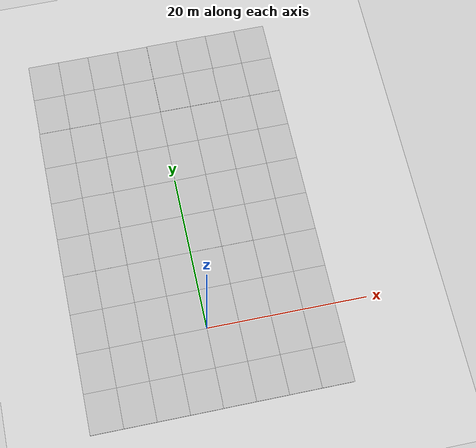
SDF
<sdf version="1.7">
 <world name="default">
  <light name="sun" type="directional">
   <pose>0 0 10 0 -0 0</pose>
   <diffuse>0.8 0.8 0.8 1</diffuse>
   <specular>0.2 0.2 0.2 1</specular>
   <attenuation>
    <range>1000</range>
    <constant>0.9</constant>
    <linear>0.01</linear>
    <quadratic>0.001</quadratic>
   </attenuation>
   <direction>-0.5 0.1 -0.9</direction>
   <spot><inner_angle>0</inner_angle><outer_angle>0</outer_angle><falloff>0</falloff></spot>
  </light>
  <model name="ground_plane">
   <static>1</static>
   <link name="link">
    <collision name="collision">
     <geometry><plane><normal>0 0 1</normal><size>100 100</size></plane></geometry>
     <surface><friction><ode><mu>100</mu><mu2>50</mu2></ode></friction></surface>
    </collision>
    <visual name="visual">
     <cast_shadows>0</cast_shadows>
     <geometry><plane><normal>0 0 1</normal><size>100 100</size></plane></geometry>
     <material>
      <script><uri>file://media/materials/scripts/gazebo.material</uri><name>Gazebo/Grey</name></script>
     </material>
    </visual>
   </link>
  </model>
  <gravity>0 0 -9.8</gravity>
  <magnetic_field>6e-06 2.3e-05 -4.2e-05</magnetic_field>
  <atmosphere type="adiabatic"/>
  <physics type="ode">
   <max_step_size>0.001</max_step_size>
   <real_time_factor>1</real_time_factor>
   <real_time_update_rate>1000</real_time_update_rate>
  </physics>
  <scene><ambient>0.4 0.4 0.4 1</ambient><background>0.7 0.7 0.7 1</background><shadows>1</shadows></scene>
  <spherical_coordinates>
   <surface_model>EARTH_WGS84</surface_model>
   <latitude_deg>0</latitude_deg>
   <longitude_deg>0</longitude_deg>
   <elevation>0</elevation>
   <heading_deg>0</heading_deg>
  </spherical_coordinates>
  <model name="mud_box">
   <static>1</static>
   <link name="link">
    <collision name="collision"><geometry><box><size>8 10 0.2</size></box></geometry></collision>
    <visual name="visual_1">
     <pose>-2 2.5 0 0 -0 0</pose>
     <cast_shadows>0</cast_shadows>
     <geometry><box><size>4 5 0.2</size></box></geometry>
     <material>
      <script>
       <uri>model://mud_box/materials/scripts</uri>
       <uri>model://mud_box/materials/textures</uri>
       <name>vrc/mud</name>
      </script>
     </material>
    </visual>
    <visual name="visual_2">
     <pose>2 2.5 0 0 -0 0</pose>
     <cast_shadows>0</cast_shadows>
     <geometry><box><size>4 5 0.2</size></box></geometry>
     <material>
      <script>
       <uri>model://mud_box/materials/scripts</uri>
       <uri>model://mud_box/materials/textures</uri>
       <name>vrc/mud</name>
      </script>
     </material>
    </visual>
    <visual name="visual_3">
     <pose>2 -2.5 0 0 -0 0</pose>
     <cast_shadows>0</cast_shadows>
     <geometry><box><size>4 5 0.2</size></box></geometry>
     <material>
      <script>
       <uri>model://mud_box/materials/scripts</uri>
       <uri>model://mud_box/materials/textures</uri>
       <name>vrc/mud</name>
      </script>
     </material>
    </visual>
    <visual name="visual_4">
     <pose>-2 -2.5 0 0 -0 0</pose>
     <cast_shadows>0</cast_shadows>
     <geometry><box><size>4 5 0.2</size></box></geometry>
     <material>
      <script>
       <uri>model://mud_box/materials/scripts</uri>
       <uri>model://mud_box/materials/textures</uri>
       <name>vrc/mud</name>
      </script>
     </material>
    </visual>
   </link>
   <pose>-4.00663 5.0057 0 0 -0 0</pose>
  </model>
  <model name="mud_box_0">
   <static>1</static>
   <link name="link">
    <collision name="collision"><geometry><box><size>8 10 0.2</size></box></geometry></collision>
    <visual name="visual_1">
     <pose>-2 2.5 0 0 -0 0</pose>
     <cast_shadows>0</cast_shadows>
     <geometry><box><size>4 5 0.2</size></box></geometry>
     <material>
      <script>
       <uri>model://mud_box/materials/scripts</uri>
       <uri>model://mud_box/materials/textures</uri>
       <name>vrc/mud</name>
      </script>
     </material>
    </visual>
    <visual name="visual_2">
     <pose>2 2.5 0 0 -0 0</pose>
     <cast_shadows>0</cast_shadows>
     <geometry><box><size>4 5 0.2</size></box></geometry>
     <material>
      <script>
       <uri>model://mud_box/materials/scripts</uri>
       <uri>model://mud_box/materials/textures</uri>
       <name>vrc/mud</name>
      </script>
     </material>
    </visual>
    <visual name="visual_3">
     <pose>2 -2.5 0 0 -0 0</pose>
     <cast_shadows>0</cast_shadows>
     <geometry><box><size>4 5 0.2</size></box></geometry>
     <material>
      <script>
       <uri>model://mud_box/materials/scripts</uri>
       <uri>model://mud_box/materials/textures</uri>
       <name>vrc/mud</name>
      </script>
     </material>
    </visual>
    <visual name="visual_4">
     <pose>-2 -2.5 0 0 -0 0</pose>
     <cast_shadows>0</cast_shadows>
     <geometry><box><size>4 5 0.2</size></box></geometry>
     <material>
      <script>
       <uri>model://mud_box/materials/scripts</uri>
       <uri>model://mud_box/materials/textures</uri>
       <name>vrc/mud</name>
      </script>
     </material>
    </visual>
   </link>
   <pose>3.9914 5.01635 0 0 -0 0</pose>
  </model>
  <model name="mud_box_1">
   <static>1</static>
   <link name="link">
    <collision name="collision"><geometry><box><size>8 10 0.2</size></box></geometry></collision>
    <visual name="visual_1">
     <pose>-2 2.5 0 0 -0 0</pose>
     <cast_shadows>0</cast_shadows>
     <geometry><box><size>4 5 0.2</size></box></geometry>
     <material>
      <script>
       <uri>model://mud_box/materials/scripts</uri>
       <uri>model://mud_box/materials/textures</uri>
       <name>vrc/mud</name>
      </script>
     </material>
    </visual>
    <visual name="visual_2">
     <pose>2 2.5 0 0 -0 0</pose>
     <cast_shadows>0</cast_shadows>
     <geometry><box><size>4 5 0.2</size></box></geometry>
     <material>
      <script>
       <uri>model://mud_box/materials/scripts</uri>
       <uri>model://mud_box/materials/textures</uri>
       <name>vrc/mud</name>
      </script>
     </material>
    </visual>
    <visual name="visual_3">
     <pose>2 -2.5 0 0 -0 0</pose>
     <cast_shadows>0</cast_shadows>
     <geometry><box><size>4 5 0.2</size></box></geometry>
     <material>
      <script>
       <uri>model://mud_box/materials/scripts</uri>
       <uri>model://mud_box/materials/textures</uri>
       <name>vrc/mud</name>
      </script>
     </material>
    </visual>
    <visual name="visual_4">
     <pose>-2 -2.5 0 0 -0 0</pose>
     <cast_shadows>0</cast_shadows>
     <geometry><box><size>4 5 0.2</size></box></geometry>
     <material>
      <script>
       <uri>model://mud_box/materials/scripts</uri>
       <uri>model://mud_box/materials/textures</uri>
       <name>vrc/mud</name>
      </script>
     </material>
    </visual>
   </link>
   <pose>11.9781 5.00779 0 0 -0 0</pose>
  </model>
  <model name="mud_box_2">
   <static>1</static>
   <link name="link">
    <collision name="collision"><geometry><box><size>8 10 0.2</size></box></geometry></collision>
    <visual name="visual_1">
     <pose>-2 2.5 0 0 -0 0</pose>
     <cast_shadows>0</cast_shadows>
     <geometry><box><size>4 5 0.2</size></box></geometry>
     <material>
      <script>
       <uri>model://mud_box/materials/scripts</uri>
       <uri>model://mud_box/materials/textures</uri>
       <name>vrc/mud</name>
      </script>
     </material>
    </visual>
    <visual name="visual_2">
     <pose>2 2.5 0 0 -0 0</pose>
     <cast_shadows>0</cast_shadows>
     <geometry><box><size>4 5 0.2</size></box></geometry>
     <material>
      <script>
       <uri>model://mud_box/materials/scripts</uri>
       <uri>model://mud_box/materials/textures</uri>
       <name>vrc/mud</name>
      </script>
     </material>
    </visual>
    <visual name="visual_3">
     <pose>2 -2.5 0 0 -0 0</pose>
     <cast_shadows>0</cast_shadows>
     <geometry><box><size>4 5 0.2</size></box></geometry>
     <material>
      <script>
       <uri>model://mud_box/materials/scripts</uri>
       <uri>model://mud_box/materials/textures</uri>
       <name>vrc/mud</name>
      </script>
     </material>
    </visual>
    <visual name="visual_4">
     <pose>-2 -2.5 0 0 -0 0</pose>
     <cast_shadows>0</cast_shadows>
     <geometry><box><size>4 5 0.2</size></box></geometry>
     <material>
      <script>
       <uri>model://mud_box/materials/scripts</uri>
       <uri>model://mud_box/materials/textures</uri>
       <name>vrc/mud</name>
      </script>
     </material>
    </visual>
   </link>
   <pose>-11.9879 4.99634 0 0 -0 0</pose>
  </model>
  <model name="mud_box_3">
   <static>1</static>
   <link name="link">
    <collision name="collision"><geometry><box><size>8 10 0.2</size></box></geometry></collision>
    <visual name="visual_1">
     <pose>-2 2.5 0 0 -0 0</pose>
     <cast_shadows>0</cast_shadows>
     <geometry><box><size>4 5 0.2</size></box></geometry>
     <material>
      <script>
       <uri>model://mud_box/materials/scripts</uri>
       <uri>model://mud_box/materials/textures</uri>
       <name>vrc/mud</name>
      </script>
     </material>
    </visual>
    <visual name="visual_2">
     <pose>2 2.5 0 0 -0 0</pose>
     <cast_shadows>0</cast_shadows>
     <geometry><box><size>4 5 0.2</size></box></geometry>
     <material>
      <script>
       <uri>model://mud_box/materials/scripts</uri>
       <uri>model://mud_box/materials/textures</uri>
       <name>vrc/mud</name>
      </script>
     </material>
    </visual>
    <visual name="visual_3">
     <pose>2 -2.5 0 0 -0 0</pose>
     <cast_shadows>0</cast_shadows>
     <geometry><box><size>4 5 0.2</size></box></geometry>
     <material>
      <script>
       <uri>model://mud_box/materials/scripts</uri>
       <uri>model://mud_box/materials/textures</uri>
       <name>vrc/mud</name>
      </script>
     </material>
    </visual>
    <visual name="visual_4">
     <pose>-2 -2.5 0 0 -0 0</pose>
     <cast_shadows>0</cast_shadows>
     <geometry><box><size>4 5 0.2</size></box></geometry>
     <material>
      <script>
       <uri>model://mud_box/materials/scripts</uri>
       <uri>model://mud_box/materials/textures</uri>
       <name>vrc/mud</name>
      </script>
     </material>
    </visual>
   </link>
   <pose>-11.9851 -4.99234 0 0 -0 0</pose>
  </model>
  <model name="mud_box_4">
   <static>1</static>
   <link name="link">
    <collision name="collision"><geometry><box><size>8 10 0.2</size></box></geometry></collision>
    <visual name="visual_1">
     <pose>-2 2.5 0 0 -0 0</pose>
     <cast_shadows>0</cast_shadows>
     <geometry><box><size>4 5 0.2</size></box></geometry>
     <material>
      <script>
       <uri>model://mud_box/materials/scripts</uri>
       <uri>model://mud_box/materials/textures</uri>
       <name>vrc/mud</name>
      </script>
     </material>
    </visual>
    <visual name="visual_2">
     <pose>2 2.5 0 0 -0 0</pose>
     <cast_shadows>0</cast_shadows>
     <geometry><box><size>4 5 0.2</size></box></geometry>
     <material>
      <script>
       <uri>model://mud_box/materials/scripts</uri>
       <uri>model://mud_box/materials/textures</uri>
       <name>vrc/mud</name>
      </script>
     </material>
    </visual>
    <visual name="visual_3">
     <pose>2 -2.5 0 0 -0 0</pose>
     <cast_shadows>0</cast_shadows>
     <geometry><box><size>4 5 0.2</size></box></geometry>
     <material>
      <script>
       <uri>model://mud_box/materials/scripts</uri>
       <uri>model://mud_box/materials/textures</uri>
       <name>vrc/mud</name>
      </script>
     </material>
    </visual>
    <visual name="visual_4">
     <pose>-2 -2.5 0 0 -0 0</pose>
     <cast_shadows>0</cast_shadows>
     <geometry><box><size>4 5 0.2</size></box></geometry>
     <material>
      <script>
       <uri>model://mud_box/materials/scripts</uri>
       <uri>model://mud_box/materials/textures</uri>
       <name>vrc/mud</name>
      </script>
     </material>
    </visual>
   </link>
   <pose>-3.99599 -4.99283 0 0 -0 0</pose>
  </model>
  <model name="mud_box_5">
   <static>1</static>
   <link name="link">
    <collision name="collision"><geometry><box><size>8 10 0.2</size></box></geometry></collision>
    <visual name="visual_1">
     <pose>-2 2.5 0 0 -0 0</pose>
     <cast_shadows>0</cast_shadows>
     <geometry><box><size>4 5 0.2</size></box></geometry>
     <material>
      <script>
       <uri>model://mud_box/materials/scripts</uri>
       <uri>model://mud_box/materials/textures</uri>
       <name>vrc/mud</name>
      </script>
     </material>
    </visual>
    <visual name="visual_2">
     <pose>2 2.5 0 0 -0 0</pose>
     <cast_shadows>0</cast_shadows>
     <geometry><box><size>4 5 0.2</size></box></geometry>
     <material>
      <script>
       <uri>model://mud_box/materials/scripts</uri>
       <uri>model://mud_box/materials/textures</uri>
       <name>vrc/mud</name>
      </script>
     </material>
    </visual>
    <visual name="visual_3">
     <pose>2 -2.5 0 0 -0 0</pose>
     <cast_shadows>0</cast_shadows>
     <geometry><box><size>4 5 0.2</size></box></geometry>
     <material>
      <script>
       <uri>model://mud_box/materials/scripts</uri>
       <uri>model://mud_box/materials/textures</uri>
       <name>vrc/mud</name>
      </script>
     </material>
    </visual>
    <visual name="visual_4">
     <pose>-2 -2.5 0 0 -0 0</pose>
     <cast_shadows>0</cast_shadows>
     <geometry><box><size>4 5 0.2</size></box></geometry>
     <material>
      <script>
       <uri>model://mud_box/materials/scripts</uri>
       <uri>model://mud_box/materials/textures</uri>
       <name>vrc/mud</name>
      </script>
     </material>
    </visual>
   </link>
   <pose>3.97214 -4.97807 0 0 -0 0</pose>
  </model>
  <model name="mud_box_6">
   <static>1</static>
   <link name="link">
    <collision name="collision"><geometry><box><size>8 10 0.2</size></box></geometry></collision>
    <visual name="visual_1">
     <pose>-2 2.5 0 0 -0 0</pose>
     <cast_shadows>0</cast_shadows>
     <geometry><box><size>4 5 0.2</size></box></geometry>
     <material>
      <script>
       <uri>model://mud_box/materials/scripts</uri>
       <uri>model://mud_box/materials/textures</uri>
       <name>vrc/mud</name>
      </script>
     </material>
    </visual>
    <visual name="visual_2">
     <pose>2 2.5 0 0 -0 0</pose>
     <cast_shadows>0</cast_shadows>
     <geometry><box><size>4 5 0.2</size></box></geometry>
     <material>
      <script>
       <uri>model://mud_box/materials/scripts</uri>
       <uri>model://mud_box/materials/textures</uri>
       <name>vrc/mud</name>
      </script>
     </material>
    </visual>
    <visual name="visual_3">
     <pose>2 -2.5 0 0 -0 0</pose>
     <cast_shadows>0</cast_shadows>
     <geometry><box><size>4 5 0.2</size></box></geometry>
     <material>
      <script>
       <uri>model://mud_box/materials/scripts</uri>
       <uri>model://mud_box/materials/textures</uri>
       <name>vrc/mud</name>
      </script>
     </material>
    </visual>
    <visual name="visual_4">
     <pose>-2 -2.5 0 0 -0 0</pose>
     <cast_shadows>0</cast_shadows>
     <geometry><box><size>4 5 0.2</size></box></geometry>
     <material>
      <script>
       <uri>model://mud_box/materials/scripts</uri>
       <uri>model://mud_box/materials/textures</uri>
       <name>vrc/mud</name>
      </script>
     </material>
    </visual>
   </link>
   <pose>11.9703 -4.96743 0 0 -0 0</pose>
  </model>
  <model name="mud_box_7">
   <static>1</static>
   <link name="link">
    <collision name="collision"><geometry><box><size>8 10 0.2</size></box></geometry></collision>
    <visual name="visual_1">
     <pose>-2 2.5 0 0 -0 0</pose>
     <cast_shadows>0</cast_shadows>
     <geometry><box><size>4 5 0.2</size></box></geometry>
     <material>
      <script>
       <uri>model://mud_box/materials/scripts</uri>
       <uri>model://mud_box/materials/textures</uri>
       <name>vrc/mud</name>
      </script>
     </material>
    </visual>
    <visual name="visual_2">
     <pose>2 2.5 0 0 -0 0</pose>
     <cast_shadows>0</cast_shadows>
     <geometry><box><size>4 5 0.2</size></box></geometry>
     <material>
      <script>
       <uri>model://mud_box/materials/scripts</uri>
       <uri>model://mud_box/materials/textures</uri>
       <name>vrc/mud</name>
      </script>
     </material>
    </visual>
    <visual name="visual_3">
     <pose>2 -2.5 0 0 -0 0</pose>
     <cast_shadows>0</cast_shadows>
     <geometry><box><size>4 5 0.2</size></box></geometry>
     <material>
      <script>
       <uri>model://mud_box/materials/scripts</uri>
       <uri>model://mud_box/materials/textures</uri>
       <name>vrc/mud</name>
      </script>
     </material>
    </visual>
    <visual name="visual_4">
     <pose>-2 -2.5 0 0 -0 0</pose>
     <cast_shadows>0</cast_shadows>
     <geometry><box><size>4 5 0.2</size></box></geometry>
     <material>
      <script>
       <uri>model://mud_box/materials/scripts</uri>
       <uri>model://mud_box/materials/textures</uri>
       <name>vrc/mud</name>
      </script>
     </material>
    </visual>
   </link>
   <pose>-11.9977 14.9992 0 0 -0 0</pose>
  </model>
  <model name="mud_box_8">
   <static>1</static>
   <link name="link">
    <collision name="collision"><geometry><box><size>8 10 0.2</size></box></geometry></collision>
    <visual name="visual_1">
     <pose>-2 2.5 0 0 -0 0</pose>
     <cast_shadows>0</cast_shadows>
     <geometry><box><size>4 5 0.2</size></box></geometry>
     <material>
      <script>
       <uri>model://mud_box/materials/scripts</uri>
       <uri>model://mud_box/materials/textures</uri>
       <name>vrc/mud</name>
      </script>
     </material>
    </visual>
    <visual name="visual_2">
     <pose>2 2.5 0 0 -0 0</pose>
     <cast_shadows>0</cast_shadows>
     <geometry><box><size>4 5 0.2</size></box></geometry>
     <material>
      <script>
       <uri>model://mud_box/materials/scripts</uri>
       <uri>model://mud_box/materials/textures</uri>
       <name>vrc/mud</name>
      </script>
     </material>
    </visual>
    <visual name="visual_3">
     <pose>2 -2.5 0 0 -0 0</pose>
     <cast_shadows>0</cast_shadows>
     <geometry><box><size>4 5 0.2</size></box></geometry>
     <material>
      <script>
       <uri>model://mud_box/materials/scripts</uri>
       <uri>model://mud_box/materials/textures</uri>
       <name>vrc/mud</name>
      </script>
     </material>
    </visual>
    <visual name="visual_4">
     <pose>-2 -2.5 0 0 -0 0</pose>
     <cast_shadows>0</cast_shadows>
     <geometry><box><size>4 5 0.2</size></box></geometry>
     <material>
      <script>
       <uri>model://mud_box/materials/scripts</uri>
       <uri>model://mud_box/materials/textures</uri>
       <name>vrc/mud</name>
      </script>
     </material>
    </visual>
   </link>
   <pose>-3.99328 14.9917 0 0 -0 0</pose>
  </model>
  <model name="mud_box_9">
   <static>1</static>
   <link name="link">
    <collision name="collision"><geometry><box><size>8 10 0.2</size></box></geometry></collision>
    <visual name="visual_1">
     <pose>-2 2.5 0 0 -0 0</pose>
     <cast_shadows>0</cast_shadows>
     <geometry><box><size>4 5 0.2</size></box></geometry>
     <material>
      <script>
       <uri>model://mud_box/materials/scripts</uri>
       <uri>model://mud_box/materials/textures</uri>
       <name>vrc/mud</name>
      </script>
     </material>
    </visual>
    <visual name="visual_2">
     <pose>2 2.5 0 0 -0 0</pose>
     <cast_shadows>0</cast_shadows>
     <geometry><box><size>4 5 0.2</size></box></geometry>
     <material>
      <script>
       <uri>model://mud_box/materials/scripts</uri>
       <uri>model://mud_box/materials/textures</uri>
       <name>vrc/mud</name>
      </script>
     </material>
    </visual>
    <visual name="visual_3">
     <pose>2 -2.5 0 0 -0 0</pose>
     <cast_shadows>0</cast_shadows>
     <geometry><box><size>4 5 0.2</size></box></geometry>
     <material>
      <script>
       <uri>model://mud_box/materials/scripts</uri>
       <uri>model://mud_box/materials/textures</uri>
       <name>vrc/mud</name>
      </script>
     </material>
    </visual>
    <visual name="visual_4">
     <pose>-2 -2.5 0 0 -0 0</pose>
     <cast_shadows>0</cast_shadows>
     <geometry><box><size>4 5 0.2</size></box></geometry>
     <material>
      <script>
       <uri>model://mud_box/materials/scripts</uri>
       <uri>model://mud_box/materials/textures</uri>
       <name>vrc/mud</name>
      </script>
     </material>
    </visual>
   </link>
   <pose>3.97843 15.0251 0 0 -0 0</pose>
  </model>
  <model name="mud_box_10">
   <static>1</static>
   <link name="link">
    <collision name="collision"><geometry><box><size>8 10 0.2</size></box></geometry></collision>
    <visual name="visual_1">
     <pose>-2 2.5 0 0 -0 0</pose>
     <cast_shadows>0</cast_shadows>
     <geometry><box><size>4 5 0.2</size></box></geometry>
     <material>
      <script>
       <uri>model://mud_box/materials/scripts</uri>
       <uri>model://mud_box/materials/textures</uri>
       <name>vrc/mud</name>
      </script>
     </material>
    </visual>
    <visual name="visual_2">
     <pose>2 2.5 0 0 -0 0</pose>
     <cast_shadows>0</cast_shadows>
     <geometry><box><size>4 5 0.2</size></box></geometry>
     <material>
      <script>
       <uri>model://mud_box/materials/scripts</uri>
       <uri>model://mud_box/materials/textures</uri>
       <name>vrc/mud</name>
      </script>
     </material>
    </visual>
    <visual name="visual_3">
     <pose>2 -2.5 0 0 -0 0</pose>
     <cast_shadows>0</cast_shadows>
     <geometry><box><size>4 5 0.2</size></box></geometry>
     <material>
      <script>
       <uri>model://mud_box/materials/scripts</uri>
       <uri>model://mud_box/materials/textures</uri>
       <name>vrc/mud</name>
      </script>
     </material>
    </visual>
    <visual name="visual_4">
     <pose>-2 -2.5 0 0 -0 0</pose>
     <cast_shadows>0</cast_shadows>
     <geometry><box><size>4 5 0.2</size></box></geometry>
     <material>
      <script>
       <uri>model://mud_box/materials/scripts</uri>
       <uri>model://mud_box/materials/textures</uri>
       <name>vrc/mud</name>
      </script>
     </material>
    </visual>
   </link>
   <pose>11.9756 15.0062 0 0 -0 0</pose>
  </model>
  <model name="mud_box_11">
   <static>1</static>
   <link name="link">
    <collision name="collision"><geometry><box><size>8 10 0.2</size></box></geometry></collision>
    <visual name="visual_1">
     <pose>-2 2.5 0 0 -0 0</pose>
     <cast_shadows>0</cast_shadows>
     <geometry><box><size>4 5 0.2</size></box></geometry>
     <material>
      <script>
       <uri>model://mud_box/materials/scripts</uri>
       <uri>model://mud_box/materials/textures</uri>
       <name>vrc/mud</name>
      </script>
     </material>
    </visual>
    <visual name="visual_2">
     <pose>2 2.5 0 0 -0 0</pose>
     <cast_shadows>0</cast_shadows>
     <geometry><box><size>4 5 0.2</size></box></geometry>
     <material>
      <script>
       <uri>model://mud_box/materials/scripts</uri>
       <uri>model://mud_box/materials/textures</uri>
       <name>vrc/mud</name>
      </script>
     </material>
    </visual>
    <visual name="visual_3">
     <pose>2 -2.5 0 0 -0 0</pose>
     <cast_shadows>0</cast_shadows>
     <geometry><box><size>4 5 0.2</size></box></geometry>
     <material>
      <script>
       <uri>model://mud_box/materials/scripts</uri>
       <uri>model://mud_box/materials/textures</uri>
       <name>vrc/mud</name>
      </script>
     </material>
    </visual>
    <visual name="visual_4">
     <pose>-2 -2.5 0 0 -0 0</pose>
     <cast_shadows>0</cast_shadows>
     <geometry><box><size>4 5 0.2</size></box></geometry>
     <material>
      <script>
       <uri>model://mud_box/materials/scripts</uri>
       <uri>model://mud_box/materials/textures</uri>
       <name>vrc/mud</name>
      </script>
     </material>
    </visual>
   </link>
   <pose>11.9771 24.9821 0 0 -0 0</pose>
  </model>
  <model name="mud_box_12">
   <static>1</static>
   <link name="link">
    <collision name="collision"><geometry><box><size>8 10 0.2</size></box></geometry></collision>
    <visual name="visual_1">
     <pose>-2 2.5 0 0 -0 0</pose>
     <cast_shadows>0</cast_shadows>
     <geometry><box><size>4 5 0.2</size></box></geometry>
     <material>
      <script>
       <uri>model://mud_box/materials/scripts</uri>
       <uri>model://mud_box/materials/textures</uri>
       <name>vrc/mud</name>
      </script>
     </material>
    </visual>
    <visual name="visual_2">
     <pose>2 2.5 0 0 -0 0</pose>
     <cast_shadows>0</cast_shadows>
     <geometry><box><size>4 5 0.2</size></box></geometry>
     <material>
      <script>
       <uri>model://mud_box/materials/scripts</uri>
       <uri>model://mud_box/materials/textures</uri>
       <name>vrc/mud</name>
      </script>
     </material>
    </visual>
    <visual name="visual_3">
     <pose>2 -2.5 0 0 -0 0</pose>
     <cast_shadows>0</cast_shadows>
     <geometry><box><size>4 5 0.2</size></box></geometry>
     <material>
      <script>
       <uri>model://mud_box/materials/scripts</uri>
       <uri>model://mud_box/materials/textures</uri>
       <name>vrc/mud</name>
      </script>
     </material>
    </visual>
    <visual name="visual_4">
     <pose>-2 -2.5 0 0 -0 0</pose>
     <cast_shadows>0</cast_shadows>
     <geometry><box><size>4 5 0.2</size></box></geometry>
     <material>
      <script>
       <uri>model://mud_box/materials/scripts</uri>
       <uri>model://mud_box/materials/textures</uri>
       <name>vrc/mud</name>
      </script>
     </material>
    </visual>
   </link>
   <pose>3.99898 24.991 0 0 -0 0</pose>
  </model>
  <model name="mud_box_13">
   <static>1</static>
   <link name="link">
    <collision name="collision"><geometry><box><size>8 10 0.2</size></box></geometry></collision>
    <visual name="visual_1">
     <pose>-2 2.5 0 0 -0 0</pose>
     <cast_shadows>0</cast_shadows>
     <geometry><box><size>4 5 0.2</size></box></geometry>
     <material>
      <script>
       <uri>model://mud_box/materials/scripts</uri>
       <uri>model://mud_box/materials/textures</uri>
       <name>vrc/mud</name>
      </script>
     </material>
    </visual>
    <visual name="visual_2">
     <pose>2 2.5 0 0 -0 0</pose>
     <cast_shadows>0</cast_shadows>
     <geometry><box><size>4 5 0.2</size></box></geometry>
     <material>
      <script>
       <uri>model://mud_box/materials/scripts</uri>
       <uri>model://mud_box/materials/textures</uri>
       <name>vrc/mud</name>
      </script>
     </material>
    </visual>
    <visual name="visual_3">
     <pose>2 -2.5 0 0 -0 0</pose>
     <cast_shadows>0</cast_shadows>
     <geometry><box><size>4 5 0.2</size></box></geometry>
     <material>
      <script>
       <uri>model://mud_box/materials/scripts</uri>
       <uri>model://mud_box/materials/textures</uri>
       <name>vrc/mud</name>
      </script>
     </material>
    </visual>
    <visual name="visual_4">
     <pose>-2 -2.5 0 0 -0 0</pose>
     <cast_shadows>0</cast_shadows>
     <geometry><box><size>4 5 0.2</size></box></geometry>
     <material>
      <script>
       <uri>model://mud_box/materials/scripts</uri>
       <uri>model://mud_box/materials/textures</uri>
       <name>vrc/mud</name>
      </script>
     </material>
    </visual>
   </link>
   <pose>-3.99824 24.9876 0 0 -0 0</pose>
  </model>
  <model name="mud_box_14">
   <static>1</static>
   <link name="link">
    <collision name="collision"><geometry><box><size>8 10 0.2</size></box></geometry></collision>
    <visual name="visual_1">
     <pose>-2 2.5 0 0 -0 0</pose>
     <cast_shadows>0</cast_shadows>
     <geometry><box><size>4 5 0.2</size></box></geometry>
     <material>
      <script>
       <uri>model://mud_box/materials/scripts</uri>
       <uri>model://mud_box/materials/textures</uri>
       <name>vrc/mud</name>
      </script>
     </material>
    </visual>
    <visual name="visual_2">
     <pose>2 2.5 0 0 -0 0</pose>
     <cast_shadows>0</cast_shadows>
     <geometry><box><size>4 5 0.2</size></box></geometry>
     <material>
      <script>
       <uri>model://mud_box/materials/scripts</uri>
       <uri>model://mud_box/materials/textures</uri>
       <name>vrc/mud</name>
      </script>
     </material>
    </visual>
    <visual name="visual_3">
     <pose>2 -2.5 0 0 -0 0</pose>
     <cast_shadows>0</cast_shadows>
     <geometry><box><size>4 5 0.2</size></box></geometry>
     <material>
      <script>
       <uri>model://mud_box/materials/scripts</uri>
       <uri>model://mud_box/materials/textures</uri>
       <name>vrc/mud</name>
      </script>
     </material>
    </visual>
    <visual name="visual_4">
     <pose>-2 -2.5 0 0 -0 0</pose>
     <cast_shadows>0</cast_shadows>
     <geometry><box><size>4 5 0.2</size></box></geometry>
     <material>
      <script>
       <uri>model://mud_box/materials/scripts</uri>
       <uri>model://mud_box/materials/textures</uri>
       <name>vrc/mud</name>
      </script>
     </material>
    </visual>
   </link>
   <pose>-12.001 24.9627 0 0 -0 0</pose>
  </model>
  <model name="mud_box_15">
   <static>1</static>
   <link name="link">
    <collision name="collision"><geometry><box><size>8 10 0.2</size></box></geometry></collision>
    <visual name="visual_1">
     <pose>-2 2.5 0 0 -0 0</pose>
     <cast_shadows>0</cast_shadows>
     <geometry><box><size>4 5 0.2</size></box></geometry>
     <material>
      <script>
       <uri>model://mud_box/materials/scripts</uri>
       <uri>model://mud_box/materials/textures</uri>
       <name>vrc/mud</name>
      </script>
     </material>
    </visual>
    <visual name="visual_2">
     <pose>2 2.5 0 0 -0 0</pose>
     <cast_shadows>0</cast_shadows>
     <geometry><box><size>4 5 0.2</size></box></geometry>
     <material>
      <script>
       <uri>model://mud_box/materials/scripts</uri>
       <uri>model://mud_box/materials/textures</uri>
       <name>vrc/mud</name>
      </script>
     </material>
    </visual>
    <visual name="visual_3">
     <pose>2 -2.5 0 0 -0 0</pose>
     <cast_shadows>0</cast_shadows>
     <geometry><box><size>4 5 0.2</size></box></geometry>
     <material>
      <script>
       <uri>model://mud_box/materials/scripts</uri>
       <uri>model://mud_box/materials/textures</uri>
       <name>vrc/mud</name>
      </script>
     </material>
    </visual>
    <visual name="visual_4">
     <pose>-2 -2.5 0 0 -0 0</pose>
     <cast_shadows>0</cast_shadows>
     <geometry><box><size>4 5 0.2</size></box></geometry>
     <material>
      <script>
       <uri>model://mud_box/materials/scripts</uri>
       <uri>model://mud_box/materials/textures</uri>
       <name>vrc/mud</name>
      </script>
     </material>
    </visual>
   </link>
   <pose>11.9734 34.9928 0 0 -0 0</pose>
  </model>
  <model name="mud_box_16">
   <static>1</static>
   <link name="link">
    <collision name="collision"><geometry><box><size>8 10 0.2</size></box></geometry></collision>
    <visual name="visual_1">
     <pose>-2 2.5 0 0 -0 0</pose>
     <cast_shadows>0</cast_shadows>
     <geometry><box><size>4 5 0.2</size></box></geometry>
     <material>
      <script>
       <uri>model://mud_box/materials/scripts</uri>
       <uri>model://mud_box/materials/textures</uri>
       <name>vrc/mud</name>
      </script>
     </material>
    </visual>
    <visual name="visual_2">
     <pose>2 2.5 0 0 -0 0</pose>
     <cast_shadows>0</cast_shadows>
     <geometry><box><size>4 5 0.2</size></box></geometry>
     <material>
      <script>
       <uri>model://mud_box/materials/scripts</uri>
       <uri>model://mud_box/materials/textures</uri>
       <name>vrc/mud</name>
      </script>
     </material>
    </visual>
    <visual name="visual_3">
     <pose>2 -2.5 0 0 -0 0</pose>
     <cast_shadows>0</cast_shadows>
     <geometry><box><size>4 5 0.2</size></box></geometry>
     <material>
      <script>
       <uri>model://mud_box/materials/scripts</uri>
       <uri>model://mud_box/materials/textures</uri>
       <name>vrc/mud</name>
      </script>
     </material>
    </visual>
    <visual name="visual_4">
     <pose>-2 -2.5 0 0 -0 0</pose>
     <cast_shadows>0</cast_shadows>
     <geometry><box><size>4 5 0.2</size></box></geometry>
     <material>
      <script>
       <uri>model://mud_box/materials/scripts</uri>
       <uri>model://mud_box/materials/textures</uri>
       <name>vrc/mud</name>
      </script>
     </material>
    </visual>
   </link>
   <pose>4.02772 35.0201 0 0 -0 0</pose>
  </model>
  <model name="mud_box_17">
   <static>1</static>
   <link name="link">
    <collision name="collision"><geometry><box><size>8 10 0.2</size></box></geometry></collision>
    <visual name="visual_1">
     <pose>-2 2.5 0 0 -0 0</pose>
     <cast_shadows>0</cast_shadows>
     <geometry><box><size>4 5 0.2</size></box></geometry>
     <material>
      <script>
       <uri>model://mud_box/materials/scripts</uri>
       <uri>model://mud_box/materials/textures</uri>
       <name>vrc/mud</name>
      </script>
     </material>
    </visual>
    <visual name="visual_2">
     <pose>2 2.5 0 0 -0 0</pose>
     <cast_shadows>0</cast_shadows>
     <geometry><box><size>4 5 0.2</size></box></geometry>
     <material>
      <script>
       <uri>model://mud_box/materials/scripts</uri>
       <uri>model://mud_box/materials/textures</uri>
       <name>vrc/mud</name>
      </script>
     </material>
    </visual>
    <visual name="visual_3">
     <pose>2 -2.5 0 0 -0 0</pose>
     <cast_shadows>0</cast_shadows>
     <geometry><box><size>4 5 0.2</size></box></geometry>
     <material>
      <script>
       <uri>model://mud_box/materials/scripts</uri>
       <uri>model://mud_box/materials/textures</uri>
       <name>vrc/mud</name>
      </script>
     </material>
    </visual>
    <visual name="visual_4">
     <pose>-2 -2.5 0 0 -0 0</pose>
     <cast_shadows>0</cast_shadows>
     <geometry><box><size>4 5 0.2</size></box></geometry>
     <material>
      <script>
       <uri>model://mud_box/materials/scripts</uri>
       <uri>model://mud_box/materials/textures</uri>
       <name>vrc/mud</name>
      </script>
     </material>
    </visual>
   </link>
   <pose>-3.98213 34.972 0 0 -0 0</pose>
  </model>
  <model name="mud_box_18">
   <static>1</static>
   <link name="link">
    <collision name="collision"><geometry><box><size>8 10 0.2</size></box></geometry></collision>
    <visual name="visual_1">
     <pose>-2 2.5 0 0 -0 0</pose>
     <cast_shadows>0</cast_shadows>
     <geometry><box><size>4 5 0.2</size></box></geometry>
     <material>
      <script>
       <uri>model://mud_box/materials/scripts</uri>
       <uri>model://mud_box/materials/textures</uri>
       <name>vrc/mud</name>
      </script>
     </material>
    </visual>
    <visual name="visual_2">
     <pose>2 2.5 0 0 -0 0</pose>
     <cast_shadows>0</cast_shadows>
     <geometry><box><size>4 5 0.2</size></box></geometry>
     <material>
      <script>
       <uri>model://mud_box/materials/scripts</uri>
       <uri>model://mud_box/materials/textures</uri>
       <name>vrc/mud</name>
      </script>
     </material>
    </visual>
    <visual name="visual_3">
     <pose>2 -2.5 0 0 -0 0</pose>
     <cast_shadows>0</cast_shadows>
     <geometry><box><size>4 5 0.2</size></box></geometry>
     <material>
      <script>
       <uri>model://mud_box/materials/scripts</uri>
       <uri>model://mud_box/materials/textures</uri>
       <name>vrc/mud</name>
      </script>
     </material>
    </visual>
    <visual name="visual_4">
     <pose>-2 -2.5 0 0 -0 0</pose>
     <cast_shadows>0</cast_shadows>
     <geometry><box><size>4 5 0.2</size></box></geometry>
     <material>
      <script>
       <uri>model://mud_box/materials/scripts</uri>
       <uri>model://mud_box/materials/textures</uri>
       <name>vrc/mud</name>
      </script>
     </material>
    </visual>
   </link>
   <pose>-11.9589 34.9766 0 0 -0 0</pose>
  </model>
 </world>
</sdf>
